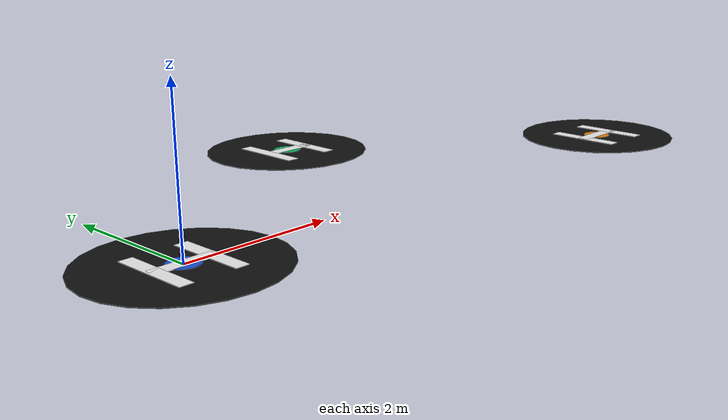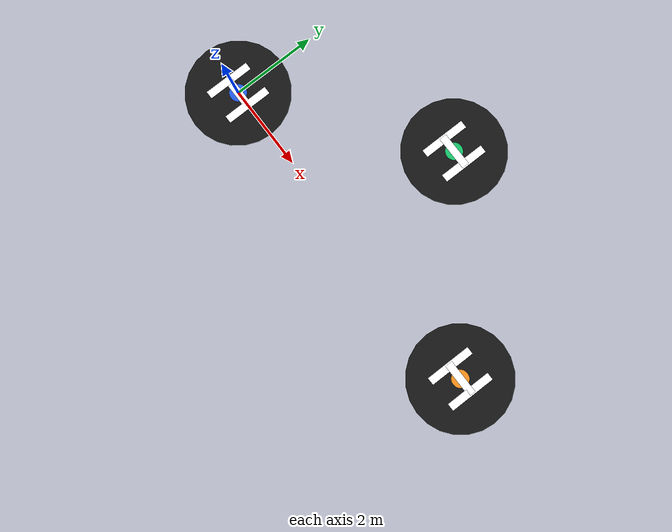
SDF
<sdf version="1.7">
 <world name="skyw_multi_lz_world">
  <physics type="ode">
   <max_step_size>0.004</max_step_size>
   <real_time_factor>1.0</real_time_factor>
   <real_time_update_rate>250</real_time_update_rate>
  </physics>
  <plugin name="gz::sim::systems::Physics" filename="gz-sim-physics-system"/>
  <plugin name="gz::sim::systems::UserCommands" filename="gz-sim-user-commands-system"/>
  <plugin name="gz::sim::systems::SceneBroadcaster" filename="gz-sim-scene-broadcaster-system"/>
  <plugin name="gz::sim::systems::Contact" filename="gz-sim-contact-system"/>
  <plugin name="gz::sim::systems::Imu" filename="gz-sim-imu-system"/>
  <plugin name="gz::sim::systems::AirPressure" filename="gz-sim-air-pressure-system"/>
  <plugin name="gz::sim::systems::ApplyLinkWrench" filename="gz-sim-apply-link-wrench-system"/>
  <plugin name="gz::sim::systems::NavSat" filename="gz-sim-navsat-system"/>
  <plugin name="gz::sim::systems::Sensors" filename="gz-sim-sensors-system">
   <render_engine>ogre2</render_engine>
  </plugin>
  <scene>
   <ambient>1 1 1 1</ambient>
   <background>0.3 0.7 0.9 1</background>
   <shadows>0</shadows>
   <grid>false</grid>
  </scene>
  <model name="ground_plane">
   <static>true</static>
   <link name="link">
    <collision name="collision">
     <geometry><plane><normal>0.0 0.0 1</normal><size>1 1</size></plane></geometry>
    </collision>
   </link>
  </model>
  <model name="lz_drone_0">
   <static>true</static>
   <link name="link">
    <visual name="pad_base">
     <pose>0 0 0.005 0 0 0</pose>
     <geometry><cylinder><radius>1.2</radius><length>0.01</length></cylinder></geometry>
     <material>
      <ambient>0.08 0.08 0.08 1</ambient>
      <diffuse>0.08 0.08 0.08 1</diffuse>
      <specular>0.15 0.15 0.15 1</specular>
     </material>
    </visual>
    <visual name="h_left">
     <pose>-0.35 0 0.014 0 0 0</pose>
     <geometry><box><size>0.18 1.1 0.008</size></box></geometry>
     <material><ambient>1 1 1 1</ambient><diffuse>1 1 1 1</diffuse></material>
    </visual>
    <visual name="h_right">
     <pose>0.35 0 0.014 0 0 0</pose>
     <geometry><box><size>0.18 1.1 0.008</size></box></geometry>
     <material><ambient>1 1 1 1</ambient><diffuse>1 1 1 1</diffuse></material>
    </visual>
    <visual name="h_center">
     <pose>0 0 0.014 0 0 0</pose>
     <geometry><box><size>0.82 0.18 0.008</size></box></geometry>
     <material><ambient>1 1 1 1</ambient><diffuse>1 1 1 1</diffuse></material>
    </visual>
    <visual name="accent">
     <pose>0 0 0.013 0 0 0</pose>
     <geometry><cylinder><radius>0.2</radius><length>0.006</length></cylinder></geometry>
     <material><ambient>0.12 0.35 0.9 1</ambient><diffuse>0.12 0.35 0.9 1</diffuse></material>
    </visual>
   </link>
  </model>
  <model name="lz_drone_1">
   <static>true</static>
   <pose>4 3 0 0 0 0</pose>
   <link name="link">
    <visual name="pad_base">
     <pose>0 0 0.005 0 0 0</pose>
     <geometry><cylinder><radius>1.2</radius><length>0.01</length></cylinder></geometry>
     <material>
      <ambient>0.08 0.08 0.08 1</ambient>
      <diffuse>0.08 0.08 0.08 1</diffuse>
      <specular>0.15 0.15 0.15 1</specular>
     </material>
    </visual>
    <visual name="h_left">
     <pose>-0.35 0 0.014 0 0 0</pose>
     <geometry><box><size>0.18 1.1 0.008</size></box></geometry>
     <material><ambient>1 1 1 1</ambient><diffuse>1 1 1 1</diffuse></material>
    </visual>
    <visual name="h_right">
     <pose>0.35 0 0.014 0 0 0</pose>
     <geometry><box><size>0.18 1.1 0.008</size></box></geometry>
     <material><ambient>1 1 1 1</ambient><diffuse>1 1 1 1</diffuse></material>
    </visual>
    <visual name="h_center">
     <pose>0 0 0.014 0 0 0</pose>
     <geometry><box><size>0.82 0.18 0.008</size></box></geometry>
     <material><ambient>1 1 1 1</ambient><diffuse>1 1 1 1</diffuse></material>
    </visual>
    <visual name="accent">
     <pose>0 0 0.013 0 0 0</pose>
     <geometry><cylinder><radius>0.2</radius><length>0.006</length></cylinder></geometry>
     <material><ambient>0.08 0.75 0.4 1</ambient><diffuse>0.08 0.75 0.4 1</diffuse></material>
    </visual>
   </link>
  </model>
  <model name="lz_drone_2">
   <static>true</static>
   <pose>8 0 0 0 0 0</pose>
   <link name="link">
    <visual name="pad_base">
     <pose>0 0 0.005 0 0 0</pose>
     <geometry><cylinder><radius>1.2</radius><length>0.01</length></cylinder></geometry>
     <material>
      <ambient>0.08 0.08 0.08 1</ambient>
      <diffuse>0.08 0.08 0.08 1</diffuse>
      <specular>0.15 0.15 0.15 1</specular>
     </material>
    </visual>
    <visual name="h_left">
     <pose>-0.35 0 0.014 0 0 0</pose>
     <geometry><box><size>0.18 1.1 0.008</size></box></geometry>
     <material><ambient>1 1 1 1</ambient><diffuse>1 1 1 1</diffuse></material>
    </visual>
    <visual name="h_right">
     <pose>0.35 0 0.014 0 0 0</pose>
     <geometry><box><size>0.18 1.1 0.008</size></box></geometry>
     <material><ambient>1 1 1 1</ambient><diffuse>1 1 1 1</diffuse></material>
    </visual>
    <visual name="h_center">
     <pose>0 0 0.014 0 0 0</pose>
     <geometry><box><size>0.82 0.18 0.008</size></box></geometry>
     <material><ambient>1 1 1 1</ambient><diffuse>1 1 1 1</diffuse></material>
    </visual>
    <visual name="accent">
     <pose>0 0 0.013 0 0 0</pose>
     <geometry><cylinder><radius>0.2</radius><length>0.006</length></cylinder></geometry>
     <material><ambient>0.95 0.55 0.1 1</ambient><diffuse>0.95 0.55 0.1 1</diffuse></material>
    </visual>
   </link>
  </model>
 </world>
</sdf>
